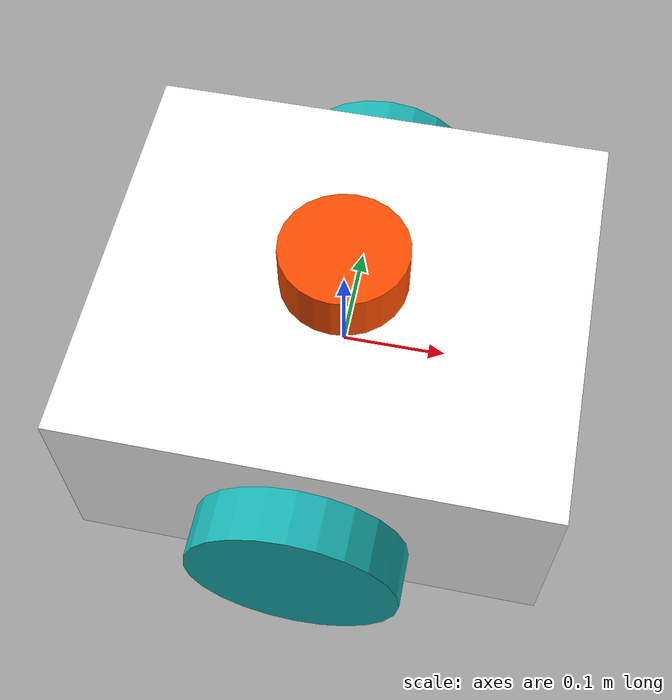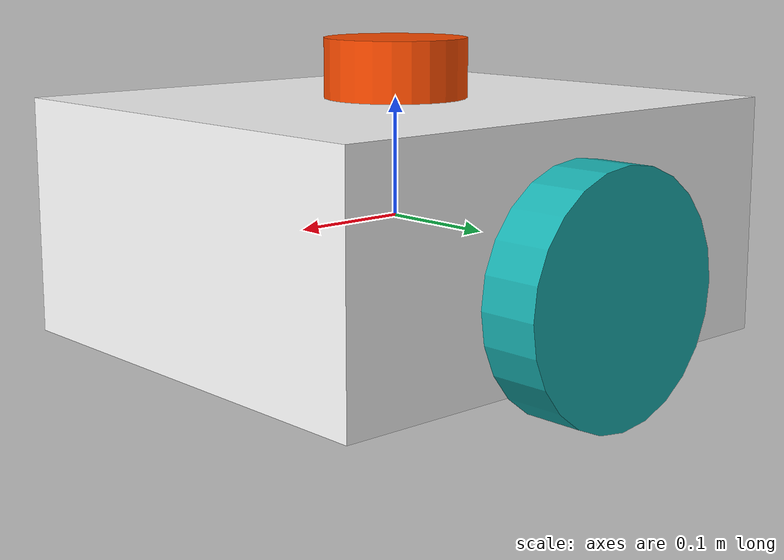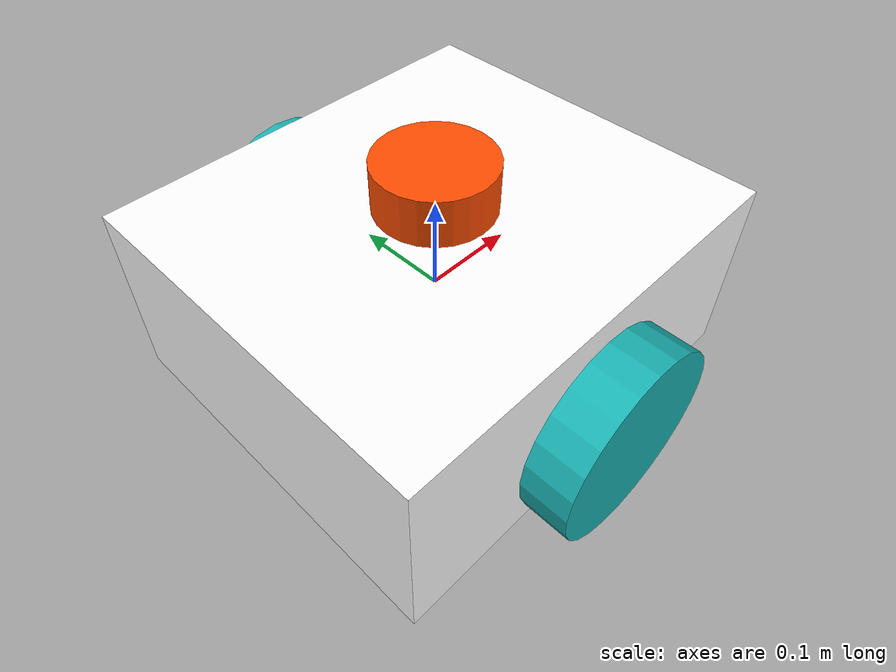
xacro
<?xml version="1.0"?>
<robot xmlns:xacro="http://www.ros.org/wiki/xacro" name="robot_name">

    <xacro:include filename="gazebo_plugins.xacro"/>
    <xacro:property name="chassis_length" value="0.45"/>
    <xacro:property name="chassis_width" value="0.4"/>

    <!--                Base Link               -->
        <link name="base_link"/>

        <joint name="base_footprint_joint" type="fixed">
            <parent link="base_link"/>
            <child link="base_footprint"/>
            <origin xyz="0 0 0" rpy="0 0 0"/>
        </joint>

        <link name="base_footprint"/>

        <!--                Chassis Joint               -->
        <joint name="chassis_joint" type="fixed">
            <origin xyz="0.0 0.0 0.0" rpy="0.0 0.0 0.0"/>
            <parent link="base_link"/>
            <child link="chassis_link"/>
            <axis xyz="0.0 0.0 0.0"/>
        </joint>

        <link name="chassis_link">
            <inertial>
                <origin xyz="0.0 0.0 0.0" rpy="0.0 0.0 0.0"/>
                <mass value="2.5"/>
                <inertia ixx="0.04167" ixy="0.0" ixz="0.0" iyy="0.05021" iyz="0.0" izz="0.07552"/>
            </inertial>
            <visual>
                <origin xyz="0.0 0.0 0.0" rpy="0.0 0.0 0.0"/>
                <geometry>
                    <box size="${chassis_length} 0.4 0.2"/>
                </geometry>
                <material name="dark">
                    <color rgba="1.0 1.0 1.0 1.0"/>
                </material>
            </visual>
            <collision>
                <origin xyz="0.0 0.0 0.0" rpy="0.0 0.0 0.0"/>
                <geometry>
                    <box size="0.45 0.4 0.2"/>
                </geometry>
            </collision>
        </link>

        <!--                Left Wheel Joint               -->
        <joint name="wheel_L_joint" type="continuous">
            <origin xyz="0 0.225 -0.03" rpy="-1.57 0.0 0.0"/>
            <parent link="base_link"/>
            <child link="wheel_L_link"/>
            <axis xyz="0 0 1"/>
        </joint>

        <link name="wheel_L_link">
            <inertial>
                <origin xyz="0.0 0.0 0.0" rpy="0.0 0.0 0.0"/>
                <mass value="0.3"/>
                <inertia ixx="0.0015" ixy="0.0" ixz="0.0" iyy="0.0015" iyz="0.0" izz="0.0008125"/>
            </inertial>
            <visual>
                <origin xyz="0.0 0.0 0.0" rpy="0.0 0.0 0.0"/>
                <geometry>
                    <cylinder radius="0.1" length="0.05"/>
                </geometry>
                <material name="goat">
                    <color rgba="0.1 0.7 0.7 1.0"/>
                </material>
            </visual>
            <collision>
                <origin xyz="0.0 0.0 0.0" rpy="0.0 0.0 0.0"/>
                <geometry>
                    <cylinder radius="0.1" length="0.05"/>
                </geometry>
            </collision>
        </link>

        <!--           Right Wheel Joint              -->
        <joint name="wheel_R_joint" type="continuous">
            <origin xyz="0 -0.225 -0.03" rpy="1.57 0.0 0.0"/>
            <parent link="base_link"/>
            <child link="wheel_R_link"/>
            <axis xyz="0 0 -1"/>
        </joint>

        <link name="wheel_R_link">
            <inertial>
                <origin xyz="0.0 0.0 0.0" rpy="0.0 0.0 0.0"/>
                <mass value="0.3"/>
                <inertia ixx="0.0015" ixy="0.0" ixz="0.0" iyy="0.0015" iyz="0.0" izz="0.0008125"/>
            </inertial>
            <visual>
                <origin xyz="0.0 0.0 0.0" rpy="0.0 0.0 0.0"/>
                <geometry>
                    <cylinder radius="0.1" length="0.05"/>
                </geometry>
                <material name="goat">
                    <color rgba="0.1 0.7 0.7 1.0"/>
                </material>
            </visual>
            <collision>
                <origin xyz="0.0 0.0 0.0" rpy="0.0 0.0 0.0"/>
                <geometry>
                    <cylinder radius="0.1" length="0.05"/>
                </geometry>
            </collision>
        </link>

        <!--                Caster wheel joints & links              -->
        <joint name="caster_wheelF_joint" type="fixed">
            <parent link="chassis_link"/>
            <child link="caster_wheelF"/>
            <origin xyz="0.15 0 -0.1" rpy="0.0 0 0"/>
        </joint>

        <link name="caster_wheelF">
            <inertial>
                <origin xyz="0.0 0.0 0.0" rpy="0.0 0.0 0.0"/>
                <mass value="0.15"/>
                <inertia ixx="0.000054" ixy="0.0" ixz="0.0" iyy="0.000054" iyz="0.0" izz="0.000054"/>
            </inertial>
            <visual>
                <origin xyz="0.0 0.0 0.0" rpy=" 0.0 0.0 0.0"/>
                <geometry>
                    <sphere radius="0.03"/>
                </geometry>
                <material name="black">
                    <color rgba="0.0 0.0 0.0 1.0"/>
                </material>
            </visual>
            <collision>
                <origin xyz="0.0 0.0 0.0" rpy="0.0 0.0 0.0"/>
                <geometry>
                    <sphere radius="0.03"/>
                </geometry>
            </collision>
        </link>

        <gazebo reference="caster_wheelF">
            <material>Gazebo/White</material>
            <mu1 value="0.001"/>
            <mu2 value="0.001"/>
        </gazebo>

        <joint name="caster_wheelB_joint" type="fixed">
            <parent link="chassis_link"/>
            <child link="caster_wheelB"/>
            <origin xyz="-0.15 0 -0.1" rpy="0.0 0 0"/>
        </joint>

        <link name="caster_wheelB">
            <inertial>
                <origin xyz="0.0 0.0 0.0" rpy="0.0 0.0 0.0"/>
                <mass value="0.15"/>
                <inertia ixx="0.000054" ixy="0.0" ixz="0.0" iyy="0.000054" iyz="0.0" izz="0.000054"/>
            </inertial>
            <visual>
                <origin xyz="0.0 0.0 0.0" rpy=" 0.0 0.0 0.0"/>
                <geometry>
                    <sphere radius="0.03"/>
                </geometry>
                <material name="black">
                    <color rgba="0.0 0.0 0.0 1.0"/>
                </material>
            </visual>
            <collision>
                <origin xyz="0.0 0.0 0.0" rpy="0.0 0.0 0.0"/>
                <geometry>
                    <sphere radius="0.03"/>
                </geometry>
            </collision>
        </link>

        <gazebo reference="caster_wheelB">
            <material>Gazebo/White</material>
            <mu1 value="0.001"/>
            <mu2 value="0.001"/>
        </gazebo>

        <!--                Laser joint & link              -->
        <joint name="lidar_joint" type="fixed">
            <parent link="chassis_link"/>
            <child link="laser_frame"/>
            <origin xyz="0 0 0.125" rpy="0.0 0 0"/>
        </joint>

        <link name="laser_frame">
            <inertial>
                <origin xyz="0.0 0.0 0.0" rpy="0.0 0.0 0.0"/>
                <mass value="0.200"/>
                <inertia ixx="0.00036" ixy="0.0" ixz="0.0" iyy="0.0" iyz="0.0" izz="0.0003433"/>
            </inertial>
            <visual>
                <origin xyz="0.0 0.0 0.0" rpy=" 0.0 0.0 0.0"/>
                <geometry>
                    <cylinder radius="0.06" length="0.05"/>
                </geometry>
                <material name="orange">
                    <color rgba="1.0 0.3 0.0 1.0"/>
                </material>
            </visual>
            <collision>
                <origin xyz="0.0 0.0 0.0" rpy="0.0 0.0 0.0"/>
                <geometry>
                    <cylinder radius="0.06" length="0.05"/>
                </geometry>
            </collision>
        </link>

</robot>
